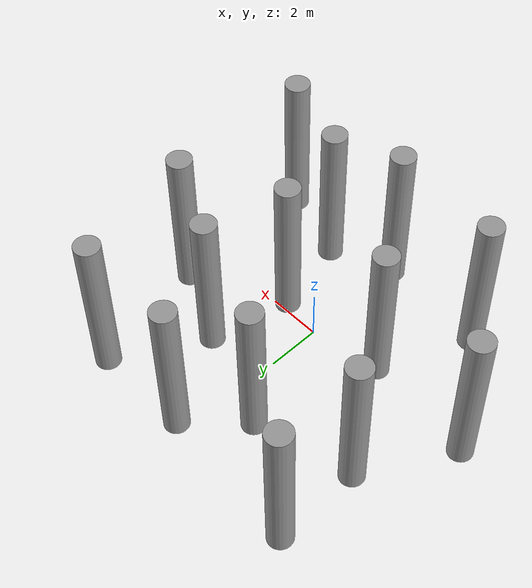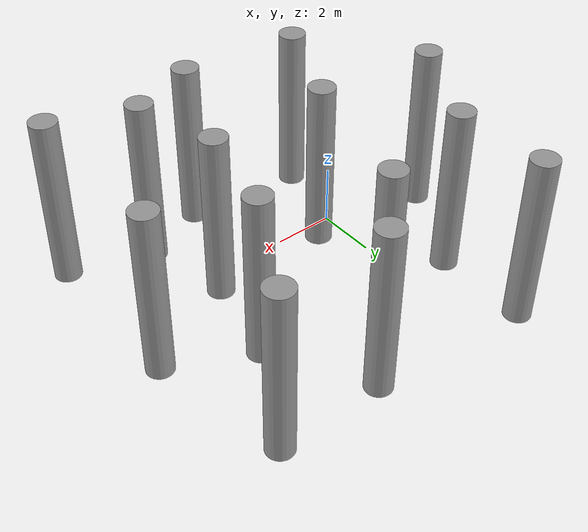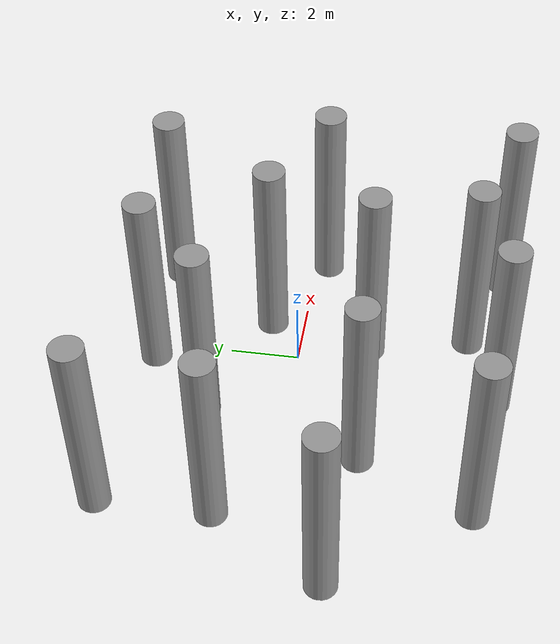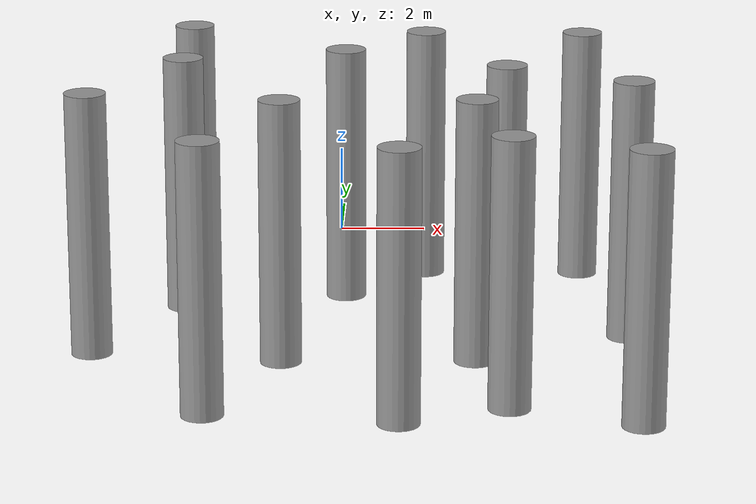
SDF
<?xml version='1.0'?>
<sdf version='1.7'>
  <model name='obstacle_yuan'>
    <link name='link_0'>
      <inertial>
        <mass>6.48915</mass>
        <inertia>
          <ixx>23.1765</ixx>
          <ixy>0</ixy>
          <ixz>0</ixz>
          <iyy>23.1765</iyy>
          <iyz>0</iyz>
          <izz>0.811144</izz>
        </inertia>
        <pose>0 0 0 0 -0 0</pose>
      </inertial>
      <pose>-1.40053 -2.00877 0.5 0 -0 0</pose>
      <visual name='visual'>
        <pose>0 0 0 0 -0 0</pose>
        <geometry>
          <cylinder>
            <radius>0.5</radius>
            <length>6.48914</length>
          </cylinder>
        </geometry>
        <material>
          <lighting>1</lighting>
          <script>
            <uri>file://media/materials/scripts/gazebo.material</uri>
            <name>Gazebo/Grey</name>
          </script>
          <shader type='pixel'/>
        </material>
        <transparency>0</transparency>
        <cast_shadows>1</cast_shadows>
      </visual>
      <collision name='collision'>
        <laser_retro>0</laser_retro>
        <max_contacts>10</max_contacts>
        <pose>0 0 0 0 -0 0</pose>
        <geometry>
          <cylinder>
            <radius>0.5</radius>
            <length>6.48914</length>
          </cylinder>
        </geometry>
        <surface>
          <friction>
            <ode>
              <mu>1</mu>
              <mu2>1</mu2>
              <fdir1>0 0 0</fdir1>
              <slip1>0</slip1>
              <slip2>0</slip2>
            </ode>
            <torsional>
              <coefficient>1</coefficient>
              <patch_radius>0</patch_radius>
              <surface_radius>0</surface_radius>
              <use_patch_radius>1</use_patch_radius>
              <ode>
                <slip>0</slip>
              </ode>
            </torsional>
          </friction>
          <bounce>
            <restitution_coefficient>0</restitution_coefficient>
            <threshold>1e+06</threshold>
          </bounce>
          <contact>
            <collide_without_contact>0</collide_without_contact>
            <collide_without_contact_bitmask>1</collide_without_contact_bitmask>
            <collide_bitmask>1</collide_bitmask>
            <ode>
              <soft_cfm>0</soft_cfm>
              <soft_erp>0.2</soft_erp>
              <kp>1e+13</kp>
              <kd>1</kd>
              <max_vel>0.01</max_vel>
              <min_depth>0</min_depth>
            </ode>
            <bullet>
              <split_impulse>1</split_impulse>
              <split_impulse_penetration_threshold>-0.01</split_impulse_penetration_threshold>
              <soft_cfm>0</soft_cfm>
              <soft_erp>0.2</soft_erp>
              <kp>1e+13</kp>
              <kd>1</kd>
            </bullet>
          </contact>
        </surface>
      </collision>
    </link>
    <link name='link_0_clone'>
      <inertial>
        <mass>6.48915</mass>
        <inertia>
          <ixx>23.1765</ixx>
          <ixy>0</ixy>
          <ixz>0</ixz>
          <iyy>23.1765</iyy>
          <iyz>0</iyz>
          <izz>0.811144</izz>
        </inertia>
        <pose>0 0 0 0 -0 0</pose>
      </inertial>
      <pose>3.23362 -1.83558 0.5 0 -0 0</pose>
      <visual name='visual'>
        <pose>0 0 0 0 -0 0</pose>
        <geometry>
          <cylinder>
            <radius>0.5</radius>
            <length>6.48914</length>
          </cylinder>
        </geometry>
        <material>
          <lighting>1</lighting>
          <script>
            <uri>file://media/materials/scripts/gazebo.material</uri>
            <name>Gazebo/Grey</name>
          </script>
          <shader type='pixel'/>
        </material>
        <transparency>0</transparency>
        <cast_shadows>1</cast_shadows>
      </visual>
      <collision name='collision'>
        <laser_retro>0</laser_retro>
        <max_contacts>10</max_contacts>
        <pose>0 0 0 0 -0 0</pose>
        <geometry>
          <cylinder>
            <radius>0.5</radius>
            <length>6.48914</length>
          </cylinder>
        </geometry>
        <surface>
          <friction>
            <ode>
              <mu>1</mu>
              <mu2>1</mu2>
              <fdir1>0 0 0</fdir1>
              <slip1>0</slip1>
              <slip2>0</slip2>
            </ode>
            <torsional>
              <coefficient>1</coefficient>
              <patch_radius>0</patch_radius>
              <surface_radius>0</surface_radius>
              <use_patch_radius>1</use_patch_radius>
              <ode>
                <slip>0</slip>
              </ode>
            </torsional>
          </friction>
          <bounce>
            <restitution_coefficient>0</restitution_coefficient>
            <threshold>1e+06</threshold>
          </bounce>
          <contact>
            <collide_without_contact>0</collide_without_contact>
            <collide_without_contact_bitmask>1</collide_without_contact_bitmask>
            <collide_bitmask>1</collide_bitmask>
            <ode>
              <soft_cfm>0</soft_cfm>
              <soft_erp>0.2</soft_erp>
              <kp>1e+13</kp>
              <kd>1</kd>
              <max_vel>0.01</max_vel>
              <min_depth>0</min_depth>
            </ode>
            <bullet>
              <split_impulse>1</split_impulse>
              <split_impulse_penetration_threshold>-0.01</split_impulse_penetration_threshold>
              <soft_cfm>0</soft_cfm>
              <soft_erp>0.2</soft_erp>
              <kp>1e+13</kp>
              <kd>1</kd>
            </bullet>
          </contact>
        </surface>
      </collision>
    </link>
    <link name='link_0_clone_0'>
      <inertial>
        <mass>6.48915</mass>
        <inertia>
          <ixx>23.1765</ixx>
          <ixy>0</ixy>
          <ixz>0</ixz>
          <iyy>23.1765</iyy>
          <iyz>0</iyz>
          <izz>0.811144</izz>
        </inertia>
        <pose>0 0 0 0 -0 0</pose>
      </inertial>
      <pose>-3 -5.59698 0.5 0 -0 0</pose>
      <visual name='visual'>
        <pose>0 0 0 0 -0 0</pose>
        <geometry>
          <cylinder>
            <radius>0.5</radius>
            <length>6.48914</length>
          </cylinder>
        </geometry>
        <material>
          <lighting>1</lighting>
          <script>
            <uri>file://media/materials/scripts/gazebo.material</uri>
            <name>Gazebo/Grey</name>
          </script>
          <shader type='pixel'/>
        </material>
        <transparency>0</transparency>
        <cast_shadows>1</cast_shadows>
      </visual>
      <collision name='collision'>
        <laser_retro>0</laser_retro>
        <max_contacts>10</max_contacts>
        <pose>0 0 0 0 -0 0</pose>
        <geometry>
          <cylinder>
            <radius>0.5</radius>
            <length>6.48914</length>
          </cylinder>
        </geometry>
        <surface>
          <friction>
            <ode>
              <mu>1</mu>
              <mu2>1</mu2>
              <fdir1>0 0 0</fdir1>
              <slip1>0</slip1>
              <slip2>0</slip2>
            </ode>
            <torsional>
              <coefficient>1</coefficient>
              <patch_radius>0</patch_radius>
              <surface_radius>0</surface_radius>
              <use_patch_radius>1</use_patch_radius>
              <ode>
                <slip>0</slip>
              </ode>
            </torsional>
          </friction>
          <bounce>
            <restitution_coefficient>0</restitution_coefficient>
            <threshold>1e+06</threshold>
          </bounce>
          <contact>
            <collide_without_contact>0</collide_without_contact>
            <collide_without_contact_bitmask>1</collide_without_contact_bitmask>
            <collide_bitmask>1</collide_bitmask>
            <ode>
              <soft_cfm>0</soft_cfm>
              <soft_erp>0.2</soft_erp>
              <kp>1e+13</kp>
              <kd>1</kd>
              <max_vel>0.01</max_vel>
              <min_depth>0</min_depth>
            </ode>
            <bullet>
              <split_impulse>1</split_impulse>
              <split_impulse_penetration_threshold>-0.01</split_impulse_penetration_threshold>
              <soft_cfm>0</soft_cfm>
              <soft_erp>0.2</soft_erp>
              <kp>1e+13</kp>
              <kd>1</kd>
            </bullet>
          </contact>
        </surface>
      </collision>
    </link>
    <link name='link_0_clone_1'>
      <inertial>
        <mass>6.48915</mass>
        <inertia>
          <ixx>23.1765</ixx>
          <ixy>0</ixy>
          <ixz>0</ixz>
          <iyy>23.1765</iyy>
          <iyz>0</iyz>
          <izz>0.811144</izz>
        </inertia>
        <pose>0 0 0 0 -0 0</pose>
      </inertial>
      <pose>-6 -1.53349 0.5 0 -0 0</pose>
      <visual name='visual'>
        <pose>0 0 0 0 -0 0</pose>
        <geometry>
          <cylinder>
            <radius>0.5</radius>
            <length>6.48914</length>
          </cylinder>
        </geometry>
        <material>
          <lighting>1</lighting>
          <script>
            <uri>file://media/materials/scripts/gazebo.material</uri>
            <name>Gazebo/Grey</name>
          </script>
          <shader type='pixel'/>
        </material>
        <transparency>0</transparency>
        <cast_shadows>1</cast_shadows>
      </visual>
      <collision name='collision'>
        <laser_retro>0</laser_retro>
        <max_contacts>10</max_contacts>
        <pose>0 0 0 0 -0 0</pose>
        <geometry>
          <cylinder>
            <radius>0.5</radius>
            <length>6.48914</length>
          </cylinder>
        </geometry>
        <surface>
          <friction>
            <ode>
              <mu>1</mu>
              <mu2>1</mu2>
              <fdir1>0 0 0</fdir1>
              <slip1>0</slip1>
              <slip2>0</slip2>
            </ode>
            <torsional>
              <coefficient>1</coefficient>
              <patch_radius>0</patch_radius>
              <surface_radius>0</surface_radius>
              <use_patch_radius>1</use_patch_radius>
              <ode>
                <slip>0</slip>
              </ode>
            </torsional>
          </friction>
          <bounce>
            <restitution_coefficient>0</restitution_coefficient>
            <threshold>1e+06</threshold>
          </bounce>
          <contact>
            <collide_without_contact>0</collide_without_contact>
            <collide_without_contact_bitmask>1</collide_without_contact_bitmask>
            <collide_bitmask>1</collide_bitmask>
            <ode>
              <soft_cfm>0</soft_cfm>
              <soft_erp>0.2</soft_erp>
              <kp>1e+13</kp>
              <kd>1</kd>
              <max_vel>0.01</max_vel>
              <min_depth>0</min_depth>
            </ode>
            <bullet>
              <split_impulse>1</split_impulse>
              <split_impulse_penetration_threshold>-0.01</split_impulse_penetration_threshold>
              <soft_cfm>0</soft_cfm>
              <soft_erp>0.2</soft_erp>
              <kp>1e+13</kp>
              <kd>1</kd>
            </bullet>
          </contact>
        </surface>
      </collision>
    </link>
    <link name='link_0_clone_10'>
      <inertial>
        <mass>6.48915</mass>
        <inertia>
          <ixx>23.1765</ixx>
          <ixy>0</ixy>
          <ixz>0</ixz>
          <iyy>23.1765</iyy>
          <iyz>0</iyz>
          <izz>0.811144</izz>
        </inertia>
        <pose>0 0 0 0 -0 0</pose>
      </inertial>
      <pose>1e-06 3 0.5 0 -0 0</pose>
      <visual name='visual'>
        <pose>0 0 0 0 -0 0</pose>
        <geometry>
          <cylinder>
            <radius>0.5</radius>
            <length>6.48914</length>
          </cylinder>
        </geometry>
        <material>
          <lighting>1</lighting>
          <script>
            <uri>file://media/materials/scripts/gazebo.material</uri>
            <name>Gazebo/Grey</name>
          </script>
          <shader type='pixel'/>
        </material>
        <transparency>0</transparency>
        <cast_shadows>1</cast_shadows>
      </visual>
      <collision name='collision'>
        <laser_retro>0</laser_retro>
        <max_contacts>10</max_contacts>
        <pose>0 0 0 0 -0 0</pose>
        <geometry>
          <cylinder>
            <radius>0.5</radius>
            <length>6.48914</length>
          </cylinder>
        </geometry>
        <surface>
          <friction>
            <ode>
              <mu>1</mu>
              <mu2>1</mu2>
              <fdir1>0 0 0</fdir1>
              <slip1>0</slip1>
              <slip2>0</slip2>
            </ode>
            <torsional>
              <coefficient>1</coefficient>
              <patch_radius>0</patch_radius>
              <surface_radius>0</surface_radius>
              <use_patch_radius>1</use_patch_radius>
              <ode>
                <slip>0</slip>
              </ode>
            </torsional>
          </friction>
          <bounce>
            <restitution_coefficient>0</restitution_coefficient>
            <threshold>1e+06</threshold>
          </bounce>
          <contact>
            <collide_without_contact>0</collide_without_contact>
            <collide_without_contact_bitmask>1</collide_without_contact_bitmask>
            <collide_bitmask>1</collide_bitmask>
            <ode>
              <soft_cfm>0</soft_cfm>
              <soft_erp>0.2</soft_erp>
              <kp>1e+13</kp>
              <kd>1</kd>
              <max_vel>0.01</max_vel>
              <min_depth>0</min_depth>
            </ode>
            <bullet>
              <split_impulse>1</split_impulse>
              <split_impulse_penetration_threshold>-0.01</split_impulse_penetration_threshold>
              <soft_cfm>0</soft_cfm>
              <soft_erp>0.2</soft_erp>
              <kp>1e+13</kp>
              <kd>1</kd>
            </bullet>
          </contact>
        </surface>
      </collision>
    </link>
    <link name='link_0_clone_11'>
      <inertial>
        <mass>6.48915</mass>
        <inertia>
          <ixx>23.1765</ixx>
          <ixy>0</ixy>
          <ixz>0</ixz>
          <iyy>23.1765</iyy>
          <iyz>0</iyz>
          <izz>0.811144</izz>
        </inertia>
        <pose>0 0 0 0 -0 0</pose>
      </inertial>
      <pose>7 -1e-06 0.5 0 -0 0</pose>
      <visual name='visual'>
        <pose>0 0 0 0 -0 0</pose>
        <geometry>
          <cylinder>
            <radius>0.5</radius>
            <length>6.48914</length>
          </cylinder>
        </geometry>
        <material>
          <lighting>1</lighting>
          <script>
            <uri>file://media/materials/scripts/gazebo.material</uri>
            <name>Gazebo/Grey</name>
          </script>
          <shader type='pixel'/>
        </material>
        <transparency>0</transparency>
        <cast_shadows>1</cast_shadows>
      </visual>
      <collision name='collision'>
        <laser_retro>0</laser_retro>
        <max_contacts>10</max_contacts>
        <pose>0 0 0 0 -0 0</pose>
        <geometry>
          <cylinder>
            <radius>0.5</radius>
            <length>6.48914</length>
          </cylinder>
        </geometry>
        <surface>
          <friction>
            <ode>
              <mu>1</mu>
              <mu2>1</mu2>
              <fdir1>0 0 0</fdir1>
              <slip1>0</slip1>
              <slip2>0</slip2>
            </ode>
            <torsional>
              <coefficient>1</coefficient>
              <patch_radius>0</patch_radius>
              <surface_radius>0</surface_radius>
              <use_patch_radius>1</use_patch_radius>
              <ode>
                <slip>0</slip>
              </ode>
            </torsional>
          </friction>
          <bounce>
            <restitution_coefficient>0</restitution_coefficient>
            <threshold>1e+06</threshold>
          </bounce>
          <contact>
            <collide_without_contact>0</collide_without_contact>
            <collide_without_contact_bitmask>1</collide_without_contact_bitmask>
            <collide_bitmask>1</collide_bitmask>
            <ode>
              <soft_cfm>0</soft_cfm>
              <soft_erp>0.2</soft_erp>
              <kp>1e+13</kp>
              <kd>1</kd>
              <max_vel>0.01</max_vel>
              <min_depth>0</min_depth>
            </ode>
            <bullet>
              <split_impulse>1</split_impulse>
              <split_impulse_penetration_threshold>-0.01</split_impulse_penetration_threshold>
              <soft_cfm>0</soft_cfm>
              <soft_erp>0.2</soft_erp>
              <kp>1e+13</kp>
              <kd>1</kd>
            </bullet>
          </contact>
        </surface>
      </collision>
    </link>
    <link name='link_0_clone_2'>
      <inertial>
        <mass>6.48915</mass>
        <inertia>
          <ixx>23.1765</ixx>
          <ixy>0</ixy>
          <ixz>0</ixz>
          <iyy>23.1765</iyy>
          <iyz>0</iyz>
          <izz>0.811144</izz>
        </inertia>
        <pose>0 0 0 0 -0 0</pose>
      </inertial>
      <pose>-4 2 0.5 0 -0 0</pose>
      <visual name='visual'>
        <pose>0 0 0 0 -0 0</pose>
        <geometry>
          <cylinder>
            <radius>0.5</radius>
            <length>6.48914</length>
          </cylinder>
        </geometry>
        <material>
          <lighting>1</lighting>
          <script>
            <uri>file://media/materials/scripts/gazebo.material</uri>
            <name>Gazebo/Grey</name>
          </script>
          <shader type='pixel'/>
        </material>
        <transparency>0</transparency>
        <cast_shadows>1</cast_shadows>
      </visual>
      <collision name='collision'>
        <laser_retro>0</laser_retro>
        <max_contacts>10</max_contacts>
        <pose>0 0 0 0 -0 0</pose>
        <geometry>
          <cylinder>
            <radius>0.5</radius>
            <length>6.48914</length>
          </cylinder>
        </geometry>
        <surface>
          <friction>
            <ode>
              <mu>1</mu>
              <mu2>1</mu2>
              <fdir1>0 0 0</fdir1>
              <slip1>0</slip1>
              <slip2>0</slip2>
            </ode>
            <torsional>
              <coefficient>1</coefficient>
              <patch_radius>0</patch_radius>
              <surface_radius>0</surface_radius>
              <use_patch_radius>1</use_patch_radius>
              <ode>
                <slip>0</slip>
              </ode>
            </torsional>
          </friction>
          <bounce>
            <restitution_coefficient>0</restitution_coefficient>
            <threshold>1e+06</threshold>
          </bounce>
          <contact>
            <collide_without_contact>0</collide_without_contact>
            <collide_without_contact_bitmask>1</collide_without_contact_bitmask>
            <collide_bitmask>1</collide_bitmask>
            <ode>
              <soft_cfm>0</soft_cfm>
              <soft_erp>0.2</soft_erp>
              <kp>1e+13</kp>
              <kd>1</kd>
              <max_vel>0.01</max_vel>
              <min_depth>0</min_depth>
            </ode>
            <bullet>
              <split_impulse>1</split_impulse>
              <split_impulse_penetration_threshold>-0.01</split_impulse_penetration_threshold>
              <soft_cfm>0</soft_cfm>
              <soft_erp>0.2</soft_erp>
              <kp>1e+13</kp>
              <kd>1</kd>
            </bullet>
          </contact>
        </surface>
      </collision>
    </link>
    <link name='link_0_clone_3'>
      <inertial>
        <mass>6.48915</mass>
        <inertia>
          <ixx>23.1765</ixx>
          <ixy>0</ixy>
          <ixz>0</ixz>
          <iyy>23.1765</iyy>
          <iyz>0</iyz>
          <izz>0.811144</izz>
        </inertia>
        <pose>0 0 0 0 -0 0</pose>
      </inertial>
      <pose>4 1.47698 0.5 0 -0 0</pose>
      <visual name='visual'>
        <pose>0 0 0 0 -0 0</pose>
        <geometry>
          <cylinder>
            <radius>0.5</radius>
            <length>6.48914</length>
          </cylinder>
        </geometry>
        <material>
          <lighting>1</lighting>
          <script>
            <uri>file://media/materials/scripts/gazebo.material</uri>
            <name>Gazebo/Grey</name>
          </script>
          <shader type='pixel'/>
        </material>
        <transparency>0</transparency>
        <cast_shadows>1</cast_shadows>
      </visual>
      <collision name='collision'>
        <laser_retro>0</laser_retro>
        <max_contacts>10</max_contacts>
        <pose>0 0 0 0 -0 0</pose>
        <geometry>
          <cylinder>
            <radius>0.5</radius>
            <length>6.48914</length>
          </cylinder>
        </geometry>
        <surface>
          <friction>
            <ode>
              <mu>1</mu>
              <mu2>1</mu2>
              <fdir1>0 0 0</fdir1>
              <slip1>0</slip1>
              <slip2>0</slip2>
            </ode>
            <torsional>
              <coefficient>1</coefficient>
              <patch_radius>0</patch_radius>
              <surface_radius>0</surface_radius>
              <use_patch_radius>1</use_patch_radius>
              <ode>
                <slip>0</slip>
              </ode>
            </torsional>
          </friction>
          <bounce>
            <restitution_coefficient>0</restitution_coefficient>
            <threshold>1e+06</threshold>
          </bounce>
          <contact>
            <collide_without_contact>0</collide_without_contact>
            <collide_without_contact_bitmask>1</collide_without_contact_bitmask>
            <collide_bitmask>1</collide_bitmask>
            <ode>
              <soft_cfm>0</soft_cfm>
              <soft_erp>0.2</soft_erp>
              <kp>1e+13</kp>
              <kd>1</kd>
              <max_vel>0.01</max_vel>
              <min_depth>0</min_depth>
            </ode>
            <bullet>
              <split_impulse>1</split_impulse>
              <split_impulse_penetration_threshold>-0.01</split_impulse_penetration_threshold>
              <soft_cfm>0</soft_cfm>
              <soft_erp>0.2</soft_erp>
              <kp>1e+13</kp>
              <kd>1</kd>
            </bullet>
          </contact>
        </surface>
      </collision>
    </link>
    <link name='link_0_clone_4'>
      <inertial>
        <mass>6.48915</mass>
        <inertia>
          <ixx>23.1765</ixx>
          <ixy>0</ixy>
          <ixz>0</ixz>
          <iyy>23.1765</iyy>
          <iyz>0</iyz>
          <izz>0.811144</izz>
        </inertia>
        <pose>0 0 0 0 -0 0</pose>
      </inertial>
      <pose>1.47717 -6 0.5 0 -0 0</pose>
      <visual name='visual'>
        <pose>0 0 0 0 -0 0</pose>
        <geometry>
          <cylinder>
            <radius>0.5</radius>
            <length>6.48914</length>
          </cylinder>
        </geometry>
        <material>
          <lighting>1</lighting>
          <script>
            <uri>file://media/materials/scripts/gazebo.material</uri>
            <name>Gazebo/Grey</name>
          </script>
          <shader type='pixel'/>
        </material>
        <transparency>0</transparency>
        <cast_shadows>1</cast_shadows>
      </visual>
      <collision name='collision'>
        <laser_retro>0</laser_retro>
        <max_contacts>10</max_contacts>
        <pose>0 0 0 0 -0 0</pose>
        <geometry>
          <cylinder>
            <radius>0.5</radius>
            <length>6.48914</length>
          </cylinder>
        </geometry>
        <surface>
          <friction>
            <ode>
              <mu>1</mu>
              <mu2>1</mu2>
              <fdir1>0 0 0</fdir1>
              <slip1>0</slip1>
              <slip2>0</slip2>
            </ode>
            <torsional>
              <coefficient>1</coefficient>
              <patch_radius>0</patch_radius>
              <surface_radius>0</surface_radius>
              <use_patch_radius>1</use_patch_radius>
              <ode>
                <slip>0</slip>
              </ode>
            </torsional>
          </friction>
          <bounce>
            <restitution_coefficient>0</restitution_coefficient>
            <threshold>1e+06</threshold>
          </bounce>
          <contact>
            <collide_without_contact>0</collide_without_contact>
            <collide_without_contact_bitmask>1</collide_without_contact_bitmask>
            <collide_bitmask>1</collide_bitmask>
            <ode>
              <soft_cfm>0</soft_cfm>
              <soft_erp>0.2</soft_erp>
              <kp>1e+13</kp>
              <kd>1</kd>
              <max_vel>0.01</max_vel>
              <min_depth>0</min_depth>
            </ode>
            <bullet>
              <split_impulse>1</split_impulse>
              <split_impulse_penetration_threshold>-0.01</split_impulse_penetration_threshold>
              <soft_cfm>0</soft_cfm>
              <soft_erp>0.2</soft_erp>
              <kp>1e+13</kp>
              <kd>1</kd>
            </bullet>
          </contact>
        </surface>
      </collision>
    </link>
    <link name='link_0_clone_5'>
      <inertial>
        <mass>6.48915</mass>
        <inertia>
          <ixx>23.1765</ixx>
          <ixy>0</ixy>
          <ixz>0</ixz>
          <iyy>23.1765</iyy>
          <iyz>0</iyz>
          <izz>0.811144</izz>
        </inertia>
        <pose>0 0 0 0 -0 0</pose>
      </inertial>
      <pose>7 -6 0.5 0 -0 0</pose>
      <visual name='visual'>
        <pose>0 0 0 0 -0 0</pose>
        <geometry>
          <cylinder>
            <radius>0.5</radius>
            <length>6.48914</length>
          </cylinder>
        </geometry>
        <material>
          <lighting>1</lighting>
          <script>
            <uri>file://media/materials/scripts/gazebo.material</uri>
            <name>Gazebo/Grey</name>
          </script>
          <shader type='pixel'/>
        </material>
        <transparency>0</transparency>
        <cast_shadows>1</cast_shadows>
      </visual>
      <collision name='collision'>
        <laser_retro>0</laser_retro>
        <max_contacts>10</max_contacts>
        <pose>0 0 0 0 -0 0</pose>
        <geometry>
          <cylinder>
            <radius>0.5</radius>
            <length>6.48914</length>
          </cylinder>
        </geometry>
        <surface>
          <friction>
            <ode>
              <mu>1</mu>
              <mu2>1</mu2>
              <fdir1>0 0 0</fdir1>
              <slip1>0</slip1>
              <slip2>0</slip2>
            </ode>
            <torsional>
              <coefficient>1</coefficient>
              <patch_radius>0</patch_radius>
              <surface_radius>0</surface_radius>
              <use_patch_radius>1</use_patch_radius>
              <ode>
                <slip>0</slip>
              </ode>
            </torsional>
          </friction>
          <bounce>
            <restitution_coefficient>0</restitution_coefficient>
            <threshold>1e+06</threshold>
          </bounce>
          <contact>
            <collide_without_contact>0</collide_without_contact>
            <collide_without_contact_bitmask>1</collide_without_contact_bitmask>
            <collide_bitmask>1</collide_bitmask>
            <ode>
              <soft_cfm>0</soft_cfm>
              <soft_erp>0.2</soft_erp>
              <kp>1e+13</kp>
              <kd>1</kd>
              <max_vel>0.01</max_vel>
              <min_depth>0</min_depth>
            </ode>
            <bullet>
              <split_impulse>1</split_impulse>
              <split_impulse_penetration_threshold>-0.01</split_impulse_penetration_threshold>
              <soft_cfm>0</soft_cfm>
              <soft_erp>0.2</soft_erp>
              <kp>1e+13</kp>
              <kd>1</kd>
            </bullet>
          </contact>
        </surface>
      </collision>
    </link>
    <link name='link_0_clone_6'>
      <inertial>
        <mass>6.48915</mass>
        <inertia>
          <ixx>23.1765</ixx>
          <ixy>0</ixy>
          <ixz>0</ixz>
          <iyy>23.1765</iyy>
          <iyz>0</iyz>
          <izz>0.811144</izz>
        </inertia>
        <pose>0 0 0 0 -0 0</pose>
      </inertial>
      <pose>4 -5 0.5 0 -0 0</pose>
      <visual name='visual'>
        <pose>0 0 0 0 -0 0</pose>
        <geometry>
          <cylinder>
            <radius>0.5</radius>
            <length>6.48914</length>
          </cylinder>
        </geometry>
        <material>
          <lighting>1</lighting>
          <script>
            <uri>file://media/materials/scripts/gazebo.material</uri>
            <name>Gazebo/Grey</name>
          </script>
          <shader type='pixel'/>
        </material>
        <transparency>0</transparency>
        <cast_shadows>1</cast_shadows>
      </visual>
      <collision name='collision'>
        <laser_retro>0</laser_retro>
        <max_contacts>10</max_contacts>
        <pose>0 0 0 0 -0 0</pose>
        <geometry>
          <cylinder>
            <radius>0.5</radius>
            <length>6.48914</length>
          </cylinder>
        </geometry>
        <surface>
          <friction>
            <ode>
              <mu>1</mu>
              <mu2>1</mu2>
              <fdir1>0 0 0</fdir1>
              <slip1>0</slip1>
              <slip2>0</slip2>
            </ode>
            <torsional>
              <coefficient>1</coefficient>
              <patch_radius>0</patch_radius>
              <surface_radius>0</surface_radius>
              <use_patch_radius>1</use_patch_radius>
              <ode>
                <slip>0</slip>
              </ode>
            </torsional>
          </friction>
          <bounce>
            <restitution_coefficient>0</restitution_coefficient>
            <threshold>1e+06</threshold>
          </bounce>
          <contact>
            <collide_without_contact>0</collide_without_contact>
            <collide_without_contact_bitmask>1</collide_without_contact_bitmask>
            <collide_bitmask>1</collide_bitmask>
            <ode>
              <soft_cfm>0</soft_cfm>
              <soft_erp>0.2</soft_erp>
              <kp>1e+13</kp>
              <kd>1</kd>
              <max_vel>0.01</max_vel>
              <min_depth>0</min_depth>
            </ode>
            <bullet>
              <split_impulse>1</split_impulse>
              <split_impulse_penetration_threshold>-0.01</split_impulse_penetration_threshold>
              <soft_cfm>0</soft_cfm>
              <soft_erp>0.2</soft_erp>
              <kp>1e+13</kp>
              <kd>1</kd>
            </bullet>
          </contact>
        </surface>
      </collision>
    </link>
    <link name='link_0_clone_7'>
      <inertial>
        <mass>6.48915</mass>
        <inertia>
          <ixx>23.1765</ixx>
          <ixy>0</ixy>
          <ixz>0</ixz>
          <iyy>23.1765</iyy>
          <iyz>0</iyz>
          <izz>0.811144</izz>
        </inertia>
        <pose>0 0 0 0 -0 0</pose>
      </inertial>
      <pose>2 5 0.5 0 -0 0</pose>
      <visual name='visual'>
        <pose>0 0 0 0 -0 0</pose>
        <geometry>
          <cylinder>
            <radius>0.5</radius>
            <length>6.48914</length>
          </cylinder>
        </geometry>
        <material>
          <lighting>1</lighting>
          <script>
            <uri>file://media/materials/scripts/gazebo.material</uri>
            <name>Gazebo/Grey</name>
          </script>
          <shader type='pixel'/>
        </material>
        <transparency>0</transparency>
        <cast_shadows>1</cast_shadows>
      </visual>
      <collision name='collision'>
        <laser_retro>0</laser_retro>
        <max_contacts>10</max_contacts>
        <pose>0 0 0 0 -0 0</pose>
        <geometry>
          <cylinder>
            <radius>0.5</radius>
            <length>6.48914</length>
          </cylinder>
        </geometry>
        <surface>
          <friction>
            <ode>
              <mu>1</mu>
              <mu2>1</mu2>
              <fdir1>0 0 0</fdir1>
              <slip1>0</slip1>
              <slip2>0</slip2>
            </ode>
            <torsional>
              <coefficient>1</coefficient>
              <patch_radius>0</patch_radius>
              <surface_radius>0</surface_radius>
              <use_patch_radius>1</use_patch_radius>
              <ode>
                <slip>0</slip>
              </ode>
            </torsional>
          </friction>
          <bounce>
            <restitution_coefficient>0</restitution_coefficient>
            <threshold>1e+06</threshold>
          </bounce>
          <contact>
            <collide_without_contact>0</collide_without_contact>
            <collide_without_contact_bitmask>1</collide_without_contact_bitmask>
            <collide_bitmask>1</collide_bitmask>
            <ode>
              <soft_cfm>0</soft_cfm>
              <soft_erp>0.2</soft_erp>
              <kp>1e+13</kp>
              <kd>1</kd>
              <max_vel>0.01</max_vel>
              <min_depth>0</min_depth>
            </ode>
            <bullet>
              <split_impulse>1</split_impulse>
              <split_impulse_penetration_threshold>-0.01</split_impulse_penetration_threshold>
              <soft_cfm>0</soft_cfm>
              <soft_erp>0.2</soft_erp>
              <kp>1e+13</kp>
              <kd>1</kd>
            </bullet>
          </contact>
        </surface>
      </collision>
    </link>
    <link name='link_0_clone_8'>
      <inertial>
        <mass>6.48915</mass>
        <inertia>
          <ixx>23.1765</ixx>
          <ixy>0</ixy>
          <ixz>0</ixz>
          <iyy>23.1765</iyy>
          <iyz>0</iyz>
          <izz>0.811144</izz>
        </inertia>
        <pose>0 0 0 0 -0 0</pose>
      </inertial>
      <pose>6 5 0.5 0 -0 0</pose>
      <visual name='visual'>
        <pose>0 0 0 0 -0 0</pose>
        <geometry>
          <cylinder>
            <radius>0.5</radius>
            <length>6.48914</length>
          </cylinder>
        </geometry>
        <material>
          <lighting>1</lighting>
          <script>
            <uri>file://media/materials/scripts/gazebo.material</uri>
            <name>Gazebo/Grey</name>
          </script>
          <shader type='pixel'/>
        </material>
        <transparency>0</transparency>
        <cast_shadows>1</cast_shadows>
      </visual>
      <collision name='collision'>
        <laser_retro>0</laser_retro>
        <max_contacts>10</max_contacts>
        <pose>0 0 0 0 -0 0</pose>
        <geometry>
          <cylinder>
            <radius>0.5</radius>
            <length>6.48914</length>
          </cylinder>
        </geometry>
        <surface>
          <friction>
            <ode>
              <mu>1</mu>
              <mu2>1</mu2>
              <fdir1>0 0 0</fdir1>
              <slip1>0</slip1>
              <slip2>0</slip2>
            </ode>
            <torsional>
              <coefficient>1</coefficient>
              <patch_radius>0</patch_radius>
              <surface_radius>0</surface_radius>
              <use_patch_radius>1</use_patch_radius>
              <ode>
                <slip>0</slip>
              </ode>
            </torsional>
          </friction>
          <bounce>
            <restitution_coefficient>0</restitution_coefficient>
            <threshold>1e+06</threshold>
          </bounce>
          <contact>
            <collide_without_contact>0</collide_without_contact>
            <collide_without_contact_bitmask>1</collide_without_contact_bitmask>
            <collide_bitmask>1</collide_bitmask>
            <ode>
              <soft_cfm>0</soft_cfm>
              <soft_erp>0.2</soft_erp>
              <kp>1e+13</kp>
              <kd>1</kd>
              <max_vel>0.01</max_vel>
              <min_depth>0</min_depth>
            </ode>
            <bullet>
              <split_impulse>1</split_impulse>
              <split_impulse_penetration_threshold>-0.01</split_impulse_penetration_threshold>
              <soft_cfm>0</soft_cfm>
              <soft_erp>0.2</soft_erp>
              <kp>1e+13</kp>
              <kd>1</kd>
            </bullet>
          </contact>
        </surface>
      </collision>
    </link>
    <link name='link_0_clone_9'>
      <inertial>
        <mass>6.48915</mass>
        <inertia>
          <ixx>23.1765</ixx>
          <ixy>0</ixy>
          <ixz>0</ixz>
          <iyy>23.1765</iyy>
          <iyz>0</iyz>
          <izz>0.811144</izz>
        </inertia>
        <pose>0 0 0 0 -0 0</pose>
      </inertial>
      <pose>-4 5.50641 0.5 0 -0 0</pose>
      <visual name='visual'>
        <pose>0 0 0 0 -0 0</pose>
        <geometry>
          <cylinder>
            <radius>0.5</radius>
            <length>6.48914</length>
          </cylinder>
        </geometry>
        <material>
          <lighting>1</lighting>
          <script>
            <uri>file://media/materials/scripts/gazebo.material</uri>
            <name>Gazebo/Grey</name>
          </script>
          <shader type='pixel'/>
        </material>
        <transparency>0</transparency>
        <cast_shadows>1</cast_shadows>
      </visual>
      <collision name='collision'>
        <laser_retro>0</laser_retro>
        <max_contacts>10</max_contacts>
        <pose>0 0 0 0 -0 0</pose>
        <geometry>
          <cylinder>
            <radius>0.5</radius>
            <length>6.48914</length>
          </cylinder>
        </geometry>
        <surface>
          <friction>
            <ode>
              <mu>1</mu>
              <mu2>1</mu2>
              <fdir1>0 0 0</fdir1>
              <slip1>0</slip1>
              <slip2>0</slip2>
            </ode>
            <torsional>
              <coefficient>1</coefficient>
              <patch_radius>0</patch_radius>
              <surface_radius>0</surface_radius>
              <use_patch_radius>1</use_patch_radius>
              <ode>
                <slip>0</slip>
              </ode>
            </torsional>
          </friction>
          <bounce>
            <restitution_coefficient>0</restitution_coefficient>
            <threshold>1e+06</threshold>
          </bounce>
          <contact>
            <collide_without_contact>0</collide_without_contact>
            <collide_without_contact_bitmask>1</collide_without_contact_bitmask>
            <collide_bitmask>1</collide_bitmask>
            <ode>
              <soft_cfm>0</soft_cfm>
              <soft_erp>0.2</soft_erp>
              <kp>1e+13</kp>
              <kd>1</kd>
              <max_vel>0.01</max_vel>
              <min_depth>0</min_depth>
            </ode>
            <bullet>
              <split_impulse>1</split_impulse>
              <split_impulse_penetration_threshold>-0.01</split_impulse_penetration_threshold>
              <soft_cfm>0</soft_cfm>
              <soft_erp>0.2</soft_erp>
              <kp>1e+13</kp>
              <kd>1</kd>
            </bullet>
          </contact>
        </surface>
      </collision>
    </link>
    <static>0</static>
    <allow_auto_disable>1</allow_auto_disable>
  </model>
</sdf>
